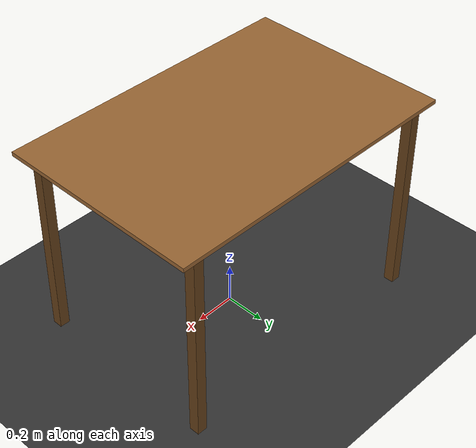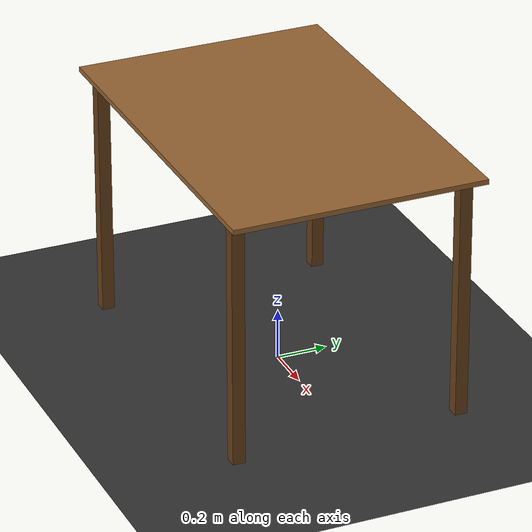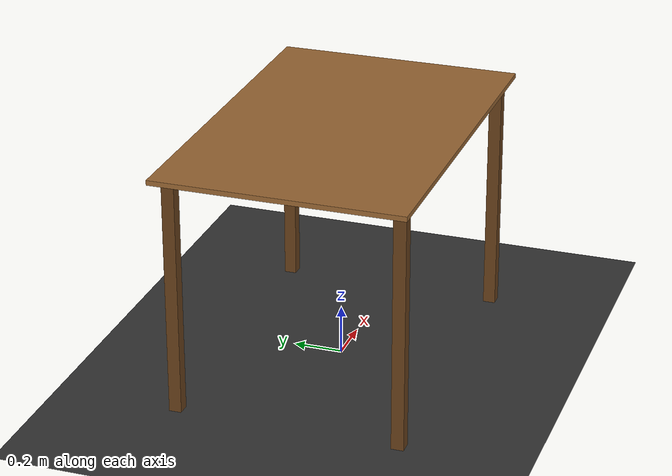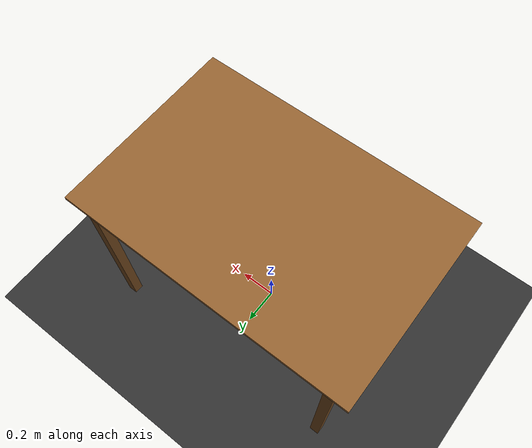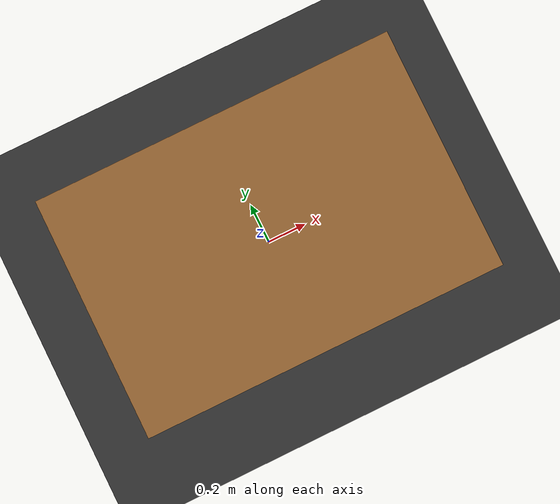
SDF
<?xml version="1.0" ?>
<sdf version="1.9">
  <world name="soft_world">
    <physics name="default_physics" default="true" type="ode">
      <max_step_size>0.001</max_step_size>
      <real_time_factor>1.0</real_time_factor>
      <real_time_update_rate>1000</real_time_update_rate>
      <ode>
        <solver>
          <type>quick</type>
          <iters>50</iters>
          <sor>1.3</sor>
        </solver>
        <constraints>
          <cfm>0.0</cfm>
          <erp>0.2</erp>
          <contact_max_correcting_vel>100.0</contact_max_correcting_vel>
          <contact_surface_layer>0.001</contact_surface_layer>
        </constraints>
      </ode>
    </physics>
    <plugin filename="ignition-gazebo-physics-system" name="gz::sim::systems::Physics"/>
    <plugin filename="ignition-gazebo-user-commands-system" name="gz::sim::systems::UserCommands"/>
    <plugin filename="ignition-gazebo-scene-broadcaster-system" name="gz::sim::systems::SceneBroadcaster"/>

    <model name="ground_plane">
      <static>true</static>
      <link name="link">
        <collision name="collision">
          <geometry>
            <plane><normal>0 0 1</normal></plane>
          </geometry>
        </collision>
        <visual name="visual">
          <geometry><plane><normal>0 0 1</normal><size>100 100</size></plane></geometry>
          <material>
            <ambient>0.2 0.2 0.2 1</ambient>
            <diffuse>0.2 0.2 0.2 1</diffuse>
          </material>
        </visual>
      </link>
    </model>

    <model name="table1">
      <pose>0 0 0 0 0 0</pose>
      <link name="link">
        <inertial>
          <mass>20.0</mass>
          <inertia>
            <ixx>1.5</ixx><iyy>2.0</iyy><izz>2.0</izz>
            <ixy>0</ixy><ixz>0</ixz><iyz>0</iyz>
          </inertia>
        </inertial>

        <collision name="table_collision">
        <pose>0 0 0.99 0 0 0</pose>
        <geometry>
          <box><size>1.5 1.0 0.02</size></box>
        </geometry>

        <surface>
          <friction>
            <ode>
              <mu>100.0</mu>     <!-- primary friction -->
              <mu2>100.0</mu2>   <!-- secondary direction -->
            </ode>
          </friction>

          <contact>
            <ode>
              <kp>1e5</kp>        <!-- stiffness (yours is WAY too low) -->
              <kd>10.0</kd>       <!-- damping -->
            </ode>
          </contact>
        </surface>
      </collision>

        <visual name="table_visual">
          <pose>0 0 0.99 0 0 0</pose>
          <geometry><box><size>1.5 1.0 0.02</size></box></geometry>
          <material>
            <ambient>0.6 0.4 0.2 1</ambient>
            <diffuse>0.6 0.4 0.2 1</diffuse>
          </material>
        </visual>

        <collision name="leg_fl_col">
          <pose>0.65 0.45 0.49 0 0 0</pose>
          <geometry><box><size>0.05 0.05 0.98</size></box></geometry>

        </collision>
        <visual name="leg_fl_vis">
          <pose>0.65 0.45 0.49 0 0 0</pose>
          <geometry><box><size>0.05 0.05 0.98</size></box></geometry>
          <material><ambient>0.4 0.25 0.1 1</ambient><diffuse>0.4 0.25 0.1 1</diffuse></material>
        </visual>

        <collision name="leg_fr_col">
          <pose>0.65 -0.45 0.49 0 0 0</pose>
          <geometry><box><size>0.05 0.05 0.98</size></box></geometry>

        </collision>
        <visual name="leg_fr_vis">
          <pose>0.65 -0.45 0.49 0 0 0</pose>
          <geometry><box><size>0.05 0.05 0.98</size></box></geometry>
          <material><ambient>0.4 0.25 0.1 1</ambient><diffuse>0.4 0.25 0.1 1</diffuse></material>
        </visual>

        <collision name="leg_bl_col">
          <pose>-0.65 0.45 0.49 0 0 0</pose>
          <geometry><box><size>0.05 0.05 0.98</size></box></geometry>

        </collision>
        <visual name="leg_bl_vis">
          <pose>-0.65 0.45 0.49 0 0 0</pose>
          <geometry><box><size>0.05 0.05 0.98</size></box></geometry>
          <material><ambient>0.4 0.25 0.1 1</ambient><diffuse>0.4 0.25 0.1 1</diffuse></material>
        </visual>

        <collision name="leg_br_col">
          <pose>-0.65 -0.45 0.49 0 0 0</pose>
          <geometry><box><size>0.05 0.05 0.98</size></box></geometry>

        </collision>
        <visual name="leg_br_vis">
          <pose>-0.65 -0.45 0.49 0 0 0</pose>
          <geometry><box><size>0.05 0.05 0.98</size></box></geometry>
          <material><ambient>0.4 0.25 0.1 1</ambient><diffuse>0.4 0.25 0.1 1</diffuse></material>
        </visual>
      </link>
    </model>

    <light type="directional" name="sun">
      <cast_shadows>true</cast_shadows>
      <pose>0 0 10 0 0 0</pose>
      <diffuse>0.8 0.8 0.8 1</diffuse>
      <specular>0.2 0.2 0.2 1</specular>
      <direction>-0.5 0.1 -0.9</direction>
    </light>
  </world>
</sdf>
